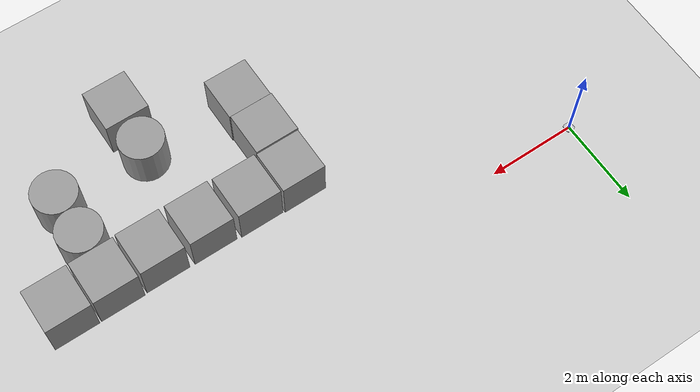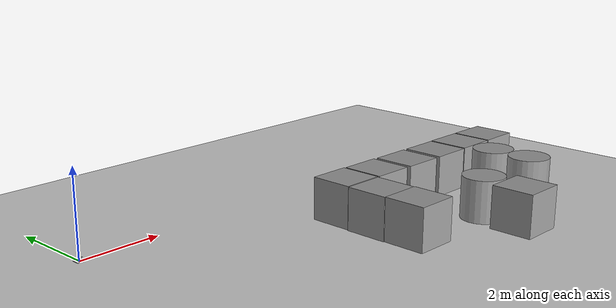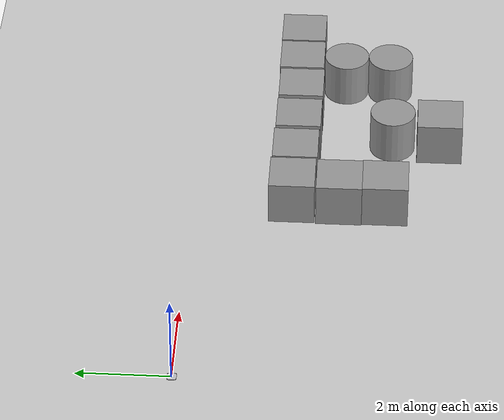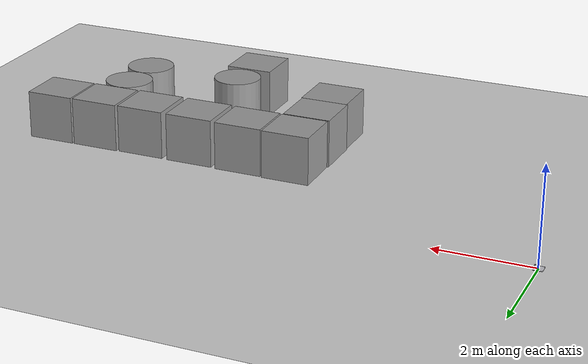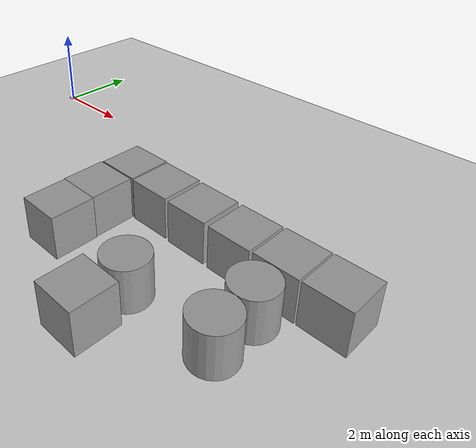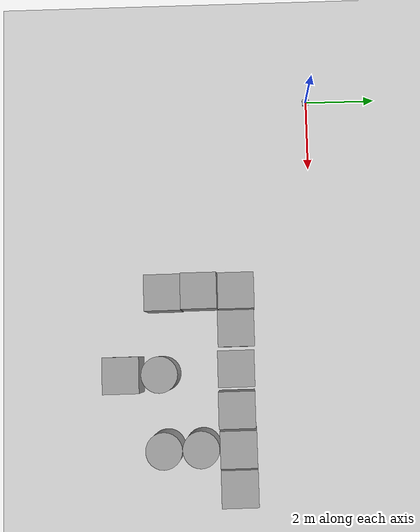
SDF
<sdf version="1.7">
 <world name="default">
  <light name="sun" type="directional">
   <pose>0 0 10 0 -0 0</pose>
   <diffuse>0.8 0.8 0.8 1</diffuse>
   <specular>0.2 0.2 0.2 1</specular>
   <attenuation>
    <range>1000</range>
    <constant>0.9</constant>
    <linear>0.01</linear>
    <quadratic>0.001</quadratic>
   </attenuation>
   <direction>-0.5 0.1 -0.9</direction>
   <spot><inner_angle>0</inner_angle><outer_angle>0</outer_angle><falloff>0</falloff></spot>
  </light>
  <model name="ground_plane">
   <static>1</static>
   <link name="link">
    <collision name="collision">
     <geometry><plane><normal>0 0 1</normal><size>100 100</size></plane></geometry>
     <surface>
      <contact><collide_bitmask>65535</collide_bitmask></contact>
      <friction><ode><mu>100</mu><mu2>50</mu2></ode></friction>
     </surface>
    </collision>
    <visual name="visual">
     <cast_shadows>0</cast_shadows>
     <geometry><plane><normal>0 0 1</normal><size>100 100</size></plane></geometry>
     <material>
      <script><uri>file://media/materials/scripts/gazebo.material</uri><name>Gazebo/Grey</name></script>
     </material>
    </visual>
   </link>
  </model>
  <gravity>0 0 -9.8</gravity>
  <magnetic_field>6e-06 2.3e-05 -4.2e-05</magnetic_field>
  <atmosphere type="adiabatic"/>
  <physics type="ode">
   <max_step_size>0.001</max_step_size>
   <real_time_factor>1</real_time_factor>
   <real_time_update_rate>1000</real_time_update_rate>
  </physics>
  <scene><ambient>0.4 0.4 0.4 1</ambient><background>0.7 0.7 0.7 1</background><shadows>1</shadows></scene>
  <spherical_coordinates>
   <surface_model>EARTH_WGS84</surface_model>
   <latitude_deg>0</latitude_deg>
   <longitude_deg>0</longitude_deg>
   <elevation>0</elevation>
   <heading_deg>0</heading_deg>
  </spherical_coordinates>
  <model name="fwomni">
   <link name="base_footprint">
    <inertial>
     <pose>0.002014 -0 0.005878 0 -0 0</pose>
     <mass>3.04689</mass>
     <inertia>
      <ixx>0.00914958</ixx>
      <ixy>-2.00784e-20</ixy>
      <ixz>-0.000169029</ixz>
      <iyy>0.00953652</iyy>
      <iyz>-2.13965e-20</iyz>
      <izz>0.0183689</izz>
     </inertia>
    </inertial>
    <collision name="base_footprint_fixed_joint_lump__base_link_collision">
     <pose>0 0 0.005 0 -0 0</pose>
     <geometry>
      <mesh>
       <scale>0.001 0.001 0.001</scale>
       <uri>/home/avdhoot/fwomni_ws/src/fwomni/meshes/base_link.stl</uri>
      </mesh>
     </geometry>
     <surface><friction><ode><mu>0.2</mu><mu2>0.2</mu2></ode></friction></surface>
    </collision>
    <collision name="base_footprint_fixed_joint_lump__rplidar_collision_1">
     <pose>0 0 0.045 0 -0 0</pose>
     <geometry>
      <mesh><scale>0.001 0.001 0.001</scale><uri>/home/avdhoot/fwomni_ws/src/fwomni/meshes/rplidar.stl</uri></mesh>
     </geometry>
     <surface><friction><ode><mu>0.2</mu><mu2>0.2</mu2></ode></friction></surface>
    </collision>
    <visual name="base_footprint_fixed_joint_lump__base_link_visual">
     <pose>0 0 0.005 0 -0 0</pose>
     <geometry>
      <mesh>
       <scale>0.001 0.001 0.001</scale>
       <uri>/home/avdhoot/fwomni_ws/src/fwomni/meshes/base_link.stl</uri>
      </mesh>
     </geometry>
     <material>
      <script><name>Gazebo/Silver</name><uri>file://media/materials/scripts/gazebo.material</uri></script>
     </material>
    </visual>
    <visual name="base_footprint_fixed_joint_lump__rplidar_visual_1">
     <pose>0 0 0.045 0 -0 0</pose>
     <geometry>
      <mesh><scale>0.001 0.001 0.001</scale><uri>/home/avdhoot/fwomni_ws/src/fwomni/meshes/rplidar.stl</uri></mesh>
     </geometry>
     <material>
      <script><name>Gazebo/Silver</name><uri>file://media/materials/scripts/gazebo.material</uri></script>
     </material>
    </visual>
    <self_collide>1</self_collide>
    <sensor name="head_hokuyo_sensor" type="ray">
     <visualize>0</visualize>
     <update_rate>20</update_rate>
     <ray>
      <scan>
       <horizontal>
        <samples>1400</samples>
        <resolution>1</resolution>
        <min_angle>-3.14159</min_angle>
        <max_angle>3.14159</max_angle>
       </horizontal>
       <vertical><samples>1</samples><min_angle>0</min_angle><max_angle>0</max_angle></vertical>
      </scan>
      <range><min>0.05</min><max>12</max><resolution>0.01</resolution></range>
      <noise><type>gaussian</type><mean>0</mean><stddev>0.01</stddev></noise>
     </ray>
     <plugin name="gazebo_ros_head_hokuyo_controller" filename="libgazebo_ros_laser.so">
      <topicName>laser/scan</topicName>
      <frameName>rplidar</frameName>
      <robotNamespace>/</robotNamespace>
     </plugin>
     <pose>0.065 0 0.07 0 -0 0</pose>
    </sensor>
   </link>
   <joint name="Cont1" type="revolute">
    <pose relative_to="base_footprint">0.085328 -0.085328 0.01 0 -0 0.785398</pose>
    <parent>base_footprint</parent>
    <child>front_right</child>
    <axis>
     <xyz>0 1 0</xyz>
     <limit><lower>-1e+16</lower><upper>1e+16</upper></limit>
     <dynamics><spring_reference>0</spring_reference><spring_stiffness>0</spring_stiffness></dynamics>
    </axis>
   </joint>
   <link name="front_right">
    <pose relative_to="Cont1">0 0 0 0 -0 0</pose>
    <inertial>
     <pose>0.003 -0 0 0 -0 0</pose>
     <mass>0.0147969</mass>
     <inertia><ixx>0</ixx><ixy>0</ixy><ixz>0</ixz><iyy>1e-06</iyy><iyz>0</iyz><izz>0</izz></inertia>
    </inertial>
    <collision name="front_right_collision">
     <pose>0 0 0 0 0 -1.5708</pose>
     <geometry>
      <mesh><scale>0.001 0.001 0.001</scale><uri>/home/avdhoot/fwomni_ws/src/fwomni/meshes/wheel.stl</uri></mesh>
     </geometry>
     <surface><friction><ode><mu>0.2</mu><mu2>0.2</mu2></ode></friction></surface>
    </collision>
    <visual name="front_right_visual">
     <pose>0 0 0 0 0 -1.5708</pose>
     <geometry>
      <mesh><scale>0.001 0.001 0.001</scale><uri>/home/avdhoot/fwomni_ws/src/fwomni/meshes/wheel.stl</uri></mesh>
     </geometry>
     <material>
      <script><name>Gazebo/Silver</name><uri>file://media/materials/scripts/gazebo.material</uri></script>
     </material>
    </visual>
    <self_collide>1</self_collide>
   </link>
   <joint name="Cont2" type="revolute">
    <pose relative_to="base_footprint">0.085328 0.085328 0.01 0 -0 2.35619</pose>
    <parent>base_footprint</parent>
    <child>front_left</child>
    <axis>
     <xyz>0 1 0</xyz>
     <limit><lower>-1e+16</lower><upper>1e+16</upper></limit>
     <dynamics><spring_reference>0</spring_reference><spring_stiffness>0</spring_stiffness></dynamics>
    </axis>
   </joint>
   <link name="front_left">
    <pose relative_to="Cont2">0 0 0 0 -0 0</pose>
    <inertial>
     <pose>0.003 -0 0 0 -0 0</pose>
     <mass>0.0147969</mass>
     <inertia><ixx>0</ixx><ixy>0</ixy><ixz>0</ixz><iyy>1e-06</iyy><iyz>0</iyz><izz>0</izz></inertia>
    </inertial>
    <collision name="front_left_collision">
     <pose>0 0 0 0 0 -1.5708</pose>
     <geometry>
      <mesh><scale>0.001 0.001 0.001</scale><uri>/home/avdhoot/fwomni_ws/src/fwomni/meshes/wheel.stl</uri></mesh>
     </geometry>
     <surface><friction><ode><mu>0.2</mu><mu2>0.2</mu2></ode></friction></surface>
    </collision>
    <visual name="front_left_visual">
     <pose>0 0 0 0 0 -1.5708</pose>
     <geometry>
      <mesh><scale>0.001 0.001 0.001</scale><uri>/home/avdhoot/fwomni_ws/src/fwomni/meshes/wheel.stl</uri></mesh>
     </geometry>
     <material>
      <script><name>Gazebo/Silver</name><uri>file://media/materials/scripts/gazebo.material</uri></script>
     </material>
    </visual>
    <self_collide>1</self_collide>
   </link>
   <joint name="Cont3" type="revolute">
    <pose relative_to="base_footprint">-0.085328 0.085328 0.01 0 0 -2.35619</pose>
    <parent>base_footprint</parent>
    <child>rear_left</child>
    <axis>
     <xyz>0 1 0</xyz>
     <limit><lower>-1e+16</lower><upper>1e+16</upper></limit>
     <dynamics><spring_reference>0</spring_reference><spring_stiffness>0</spring_stiffness></dynamics>
    </axis>
   </joint>
   <link name="rear_left">
    <pose relative_to="Cont3">0 0 0 0 -0 0</pose>
    <inertial>
     <pose>0.003 -0 0 0 -0 0</pose>
     <mass>0.0147969</mass>
     <inertia><ixx>0</ixx><ixy>0</ixy><ixz>0</ixz><iyy>1e-06</iyy><iyz>0</iyz><izz>0</izz></inertia>
    </inertial>
    <collision name="rear_left_collision">
     <pose>0 0 0 0 0 -1.5708</pose>
     <geometry>
      <mesh><scale>0.001 0.001 0.001</scale><uri>/home/avdhoot/fwomni_ws/src/fwomni/meshes/wheel.stl</uri></mesh>
     </geometry>
     <surface><friction><ode><mu>0.2</mu><mu2>0.2</mu2></ode></friction></surface>
    </collision>
    <visual name="rear_left_visual">
     <pose>0 0 0 0 0 -1.5708</pose>
     <geometry>
      <mesh><scale>0.001 0.001 0.001</scale><uri>/home/avdhoot/fwomni_ws/src/fwomni/meshes/wheel.stl</uri></mesh>
     </geometry>
     <material>
      <script><name>Gazebo/Silver</name><uri>file://media/materials/scripts/gazebo.material</uri></script>
     </material>
    </visual>
    <self_collide>1</self_collide>
   </link>
   <joint name="Cont4" type="revolute">
    <pose relative_to="base_footprint">-0.085328 -0.085328 0.01 0 0 -0.785398</pose>
    <parent>base_footprint</parent>
    <child>rear_right</child>
    <axis>
     <xyz>0 1 0</xyz>
     <limit><lower>-1e+16</lower><upper>1e+16</upper></limit>
     <dynamics><spring_reference>0</spring_reference><spring_stiffness>0</spring_stiffness></dynamics>
    </axis>
   </joint>
   <link name="rear_right">
    <pose relative_to="Cont4">0 0 0 0 -0 0</pose>
    <inertial>
     <pose>0.003 -0 0 0 -0 0</pose>
     <mass>0.0147969</mass>
     <inertia><ixx>0</ixx><ixy>0</ixy><ixz>0</ixz><iyy>1e-06</iyy><iyz>0</iyz><izz>0</izz></inertia>
    </inertial>
    <collision name="rear_right_collision">
     <pose>0 0 0 0 0 -1.5708</pose>
     <geometry>
      <mesh><scale>0.001 0.001 0.001</scale><uri>/home/avdhoot/fwomni_ws/src/fwomni/meshes/wheel.stl</uri></mesh>
     </geometry>
     <surface><friction><ode><mu>0.2</mu><mu2>0.2</mu2></ode></friction></surface>
    </collision>
    <visual name="rear_right_visual">
     <pose>0 0 0 0 0 -1.5708</pose>
     <geometry>
      <mesh><scale>0.001 0.001 0.001</scale><uri>/home/avdhoot/fwomni_ws/src/fwomni/meshes/wheel.stl</uri></mesh>
     </geometry>
     <material>
      <script><name>Gazebo/Silver</name><uri>file://media/materials/scripts/gazebo.material</uri></script>
     </material>
    </visual>
    <self_collide>1</self_collide>
   </link>
   <plugin name="control" filename="libgazebo_ros_control.so"><robotNamespace>/</robotNamespace></plugin>
   <static>0</static>
   <plugin name="mecanum_drive" filename="libgazebo_ros_planar_move.so">
    <commandTopic>cmd_vel</commandTopic>
    <odometryTopic>odom</odometryTopic>
    <odometryFrame>odom</odometryFrame>
    <odometryRate>100.0</odometryRate>
    <robotBaseFrame>base_footprint</robotBaseFrame>
    <publishTF>1</publishTF>
    <robotNamespace>/</robotNamespace>
   </plugin>
   <pose>2e-06 3e-06 -3.6e-05 0 8e-06 5e-06</pose>
  </model>
  <model name="unit_box">
   <pose>10.9386 -2.24327 0.499995 0 1e-05 0</pose>
   <link name="link">
    <inertial>
     <mass>1</mass>
     <inertia>
      <ixx>0.166667</ixx>
      <ixy>0</ixy>
      <ixz>0</ixz>
      <iyy>0.166667</iyy>
      <iyz>0</iyz>
      <izz>0.166667</izz>
     </inertia>
    </inertial>
    <collision name="collision"><geometry><box><size>1 1 1</size></box></geometry></collision>
    <visual name="visual">
     <geometry><box><size>1 1 1</size></box></geometry>
     <material>
      <script><name>Gazebo/Grey</name><uri>file://media/materials/scripts/gazebo.material</uri></script>
     </material>
    </visual>
   </link>
  </model>
  <model name="unit_box_0">
   <pose>9.89919 -2.24909 0.5 0 -0 0.000392</pose>
   <link name="link">
    <inertial>
     <mass>1</mass>
     <inertia>
      <ixx>0.166667</ixx>
      <ixy>0</ixy>
      <ixz>0</ixz>
      <iyy>0.166667</iyy>
      <iyz>0</iyz>
      <izz>0.166667</izz>
     </inertia>
    </inertial>
    <collision name="collision"><geometry><box><size>1 1 1</size></box></geometry></collision>
    <visual name="visual">
     <geometry><box><size>1 1 1</size></box></geometry>
     <material>
      <script><name>Gazebo/Grey</name><uri>file://media/materials/scripts/gazebo.material</uri></script>
     </material>
    </visual>
   </link>
  </model>
  <model name="unit_box_1">
   <pose>8.84488 -2.26742 0.499995 0 1e-05 0</pose>
   <link name="link">
    <inertial>
     <mass>1</mass>
     <inertia>
      <ixx>0.166667</ixx>
      <ixy>0</ixy>
      <ixz>0</ixz>
      <iyy>0.166667</iyy>
      <iyz>0</iyz>
      <izz>0.166667</izz>
     </inertia>
    </inertial>
    <collision name="collision"><geometry><box><size>1 1 1</size></box></geometry></collision>
    <visual name="visual">
     <geometry><box><size>1 1 1</size></box></geometry>
     <material>
      <script><name>Gazebo/Grey</name><uri>file://media/materials/scripts/gazebo.material</uri></script>
     </material>
    </visual>
   </link>
  </model>
  <model name="unit_box_2">
   <pose>7.73031 -2.25838 0.499995 -1e-05 -0 -0</pose>
   <link name="link">
    <inertial>
     <mass>1</mass>
     <inertia>
      <ixx>0.166667</ixx>
      <ixy>0</ixy>
      <ixz>0</ixz>
      <iyy>0.166667</iyy>
      <iyz>0</iyz>
      <izz>0.166667</izz>
     </inertia>
    </inertial>
    <collision name="collision"><geometry><box><size>1 1 1</size></box></geometry></collision>
    <visual name="visual">
     <geometry><box><size>1 1 1</size></box></geometry>
     <material>
      <script><name>Gazebo/Grey</name><uri>file://media/materials/scripts/gazebo.material</uri></script>
     </material>
    </visual>
   </link>
  </model>
  <model name="unit_box_3">
   <pose>6.63065 -2.23421 0.499995 0 1e-05 0</pose>
   <link name="link">
    <inertial>
     <mass>1</mass>
     <inertia>
      <ixx>0.166667</ixx>
      <ixy>0</ixy>
      <ixz>0</ixz>
      <iyy>0.166667</iyy>
      <iyz>0</iyz>
      <izz>0.166667</izz>
     </inertia>
    </inertial>
    <collision name="collision"><geometry><box><size>1 1 1</size></box></geometry></collision>
    <visual name="visual">
     <geometry><box><size>1 1 1</size></box></geometry>
     <material>
      <script><name>Gazebo/Grey</name><uri>file://media/materials/scripts/gazebo.material</uri></script>
     </material>
    </visual>
   </link>
  </model>
  <model name="unit_box_4">
   <pose>5.59128 -2.20967 0.499995 -1e-05 -0 -0</pose>
   <link name="link">
    <inertial>
     <mass>1</mass>
     <inertia>
      <ixx>0.166667</ixx>
      <ixy>0</ixy>
      <ixz>0</ixz>
      <iyy>0.166667</iyy>
      <iyz>0</iyz>
      <izz>0.166667</izz>
     </inertia>
    </inertial>
    <collision name="collision"><geometry><box><size>1 1 1</size></box></geometry></collision>
    <visual name="visual">
     <geometry><box><size>1 1 1</size></box></geometry>
     <material>
      <script><name>Gazebo/Grey</name><uri>file://media/materials/scripts/gazebo.material</uri></script>
     </material>
    </visual>
   </link>
  </model>
  <model name="unit_box_5">
   <pose>5.56692 -3.23828 0.499995 1e-05 0 0.000261</pose>
   <link name="link">
    <inertial>
     <mass>1</mass>
     <inertia>
      <ixx>0.166667</ixx>
      <ixy>0</ixy>
      <ixz>0</ixz>
      <iyy>0.166667</iyy>
      <iyz>0</iyz>
      <izz>0.166667</izz>
     </inertia>
    </inertial>
    <collision name="collision"><geometry><box><size>1 1 1</size></box></geometry></collision>
    <visual name="visual">
     <geometry><box><size>1 1 1</size></box></geometry>
     <material>
      <script><name>Gazebo/Grey</name><uri>file://media/materials/scripts/gazebo.material</uri></script>
     </material>
    </visual>
   </link>
  </model>
  <model name="unit_box_6">
   <pose>5.58792 -4.23828 0.499995 1e-05 0 0.000261</pose>
   <link name="link">
    <inertial>
     <mass>1</mass>
     <inertia>
      <ixx>0.166667</ixx>
      <ixy>0</ixy>
      <ixz>0</ixz>
      <iyy>0.166667</iyy>
      <iyz>0</iyz>
      <izz>0.166667</izz>
     </inertia>
    </inertial>
    <collision name="collision"><geometry><box><size>1 1 1</size></box></geometry></collision>
    <visual name="visual">
     <geometry><box><size>1 1 1</size></box></geometry>
     <material>
      <script><name>Gazebo/Grey</name><uri>file://media/materials/scripts/gazebo.material</uri></script>
     </material>
    </visual>
   </link>
  </model>
  <model name="unit_box_7">
   <pose>7.82334 -5.40501 0.499995 0 1e-05 0</pose>
   <link name="link">
    <inertial>
     <mass>1</mass>
     <inertia>
      <ixx>0.166667</ixx>
      <ixy>0</ixy>
      <ixz>0</ixz>
      <iyy>0.166667</iyy>
      <iyz>0</iyz>
      <izz>0.166667</izz>
     </inertia>
    </inertial>
    <collision name="collision"><geometry><box><size>1 1 1</size></box></geometry></collision>
    <visual name="visual">
     <geometry><box><size>1 1 1</size></box></geometry>
     <material>
      <script><name>Gazebo/Grey</name><uri>file://media/materials/scripts/gazebo.material</uri></script>
     </material>
    </visual>
   </link>
  </model>
  <model name="unit_cylinder">
   <pose>7.83246 -4.35094 0.499997 3e-06 3e-06 0</pose>
   <link name="link">
    <inertial>
     <mass>1</mass>
     <inertia><ixx>0.145833</ixx><ixy>0</ixy><ixz>0</ixz><iyy>0.145833</iyy><iyz>0</iyz><izz>0.125</izz></inertia>
    </inertial>
    <collision name="collision">
     <geometry><cylinder><radius>0.5</radius><length>1</length></cylinder></geometry>
    </collision>
    <visual name="visual">
     <geometry><cylinder><radius>0.5</radius><length>1</length></cylinder></geometry>
     <material>
      <script><name>Gazebo/Grey</name><uri>file://media/materials/scripts/gazebo.material</uri></script>
     </material>
    </visual>
   </link>
  </model>
  <model name="unit_cylinder_0">
   <pose>9.87426 -3.25983 0.499999 -2e-06 -2e-06 0.000656</pose>
   <link name="link">
    <inertial>
     <mass>1</mass>
     <inertia><ixx>0.145833</ixx><ixy>0</ixy><ixz>0</ixz><iyy>0.145833</iyy><iyz>0</iyz><izz>0.125</izz></inertia>
    </inertial>
    <collision name="collision">
     <geometry><cylinder><radius>0.5</radius><length>1</length></cylinder></geometry>
    </collision>
    <visual name="visual">
     <geometry><cylinder><radius>0.5</radius><length>1</length></cylinder></geometry>
     <material>
      <script><name>Gazebo/Grey</name><uri>file://media/materials/scripts/gazebo.material</uri></script>
     </material>
    </visual>
   </link>
  </model>
  <model name="unit_cylinder_1">
   <pose>9.87999 -4.25996 0.499998 3e-06 4e-06 -0.000406</pose>
   <link name="link">
    <inertial>
     <mass>1</mass>
     <inertia><ixx>0.145833</ixx><ixy>0</ixy><ixz>0</ixz><iyy>0.145833</iyy><iyz>0</iyz><izz>0.125</izz></inertia>
    </inertial>
    <collision name="collision">
     <geometry><cylinder><radius>0.5</radius><length>1</length></cylinder></geometry>
    </collision>
    <visual name="visual">
     <geometry><cylinder><radius>0.5</radius><length>1</length></cylinder></geometry>
     <material>
      <script><name>Gazebo/Grey</name><uri>file://media/materials/scripts/gazebo.material</uri></script>
     </material>
    </visual>
   </link>
  </model>
 </world>
</sdf>
